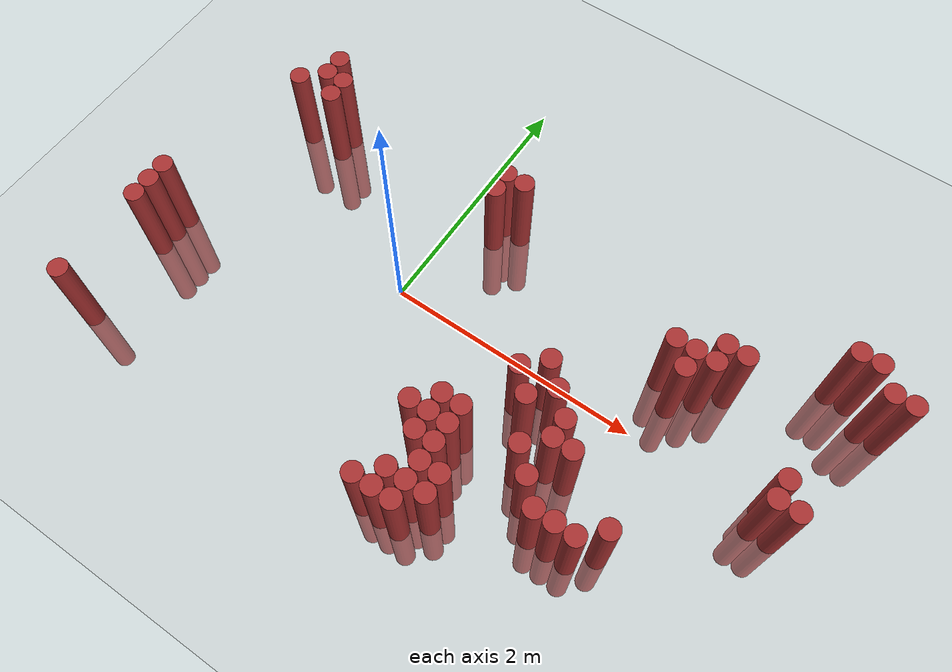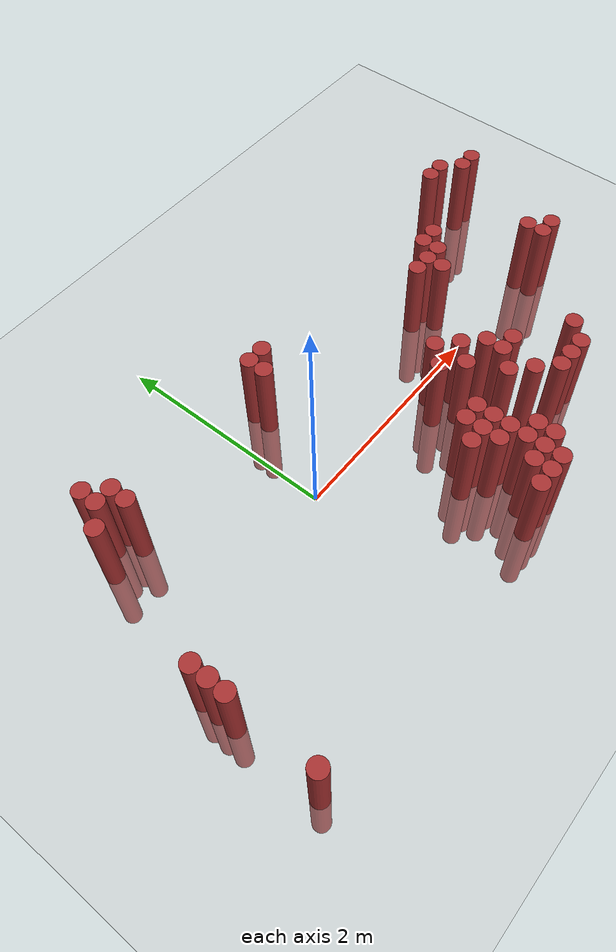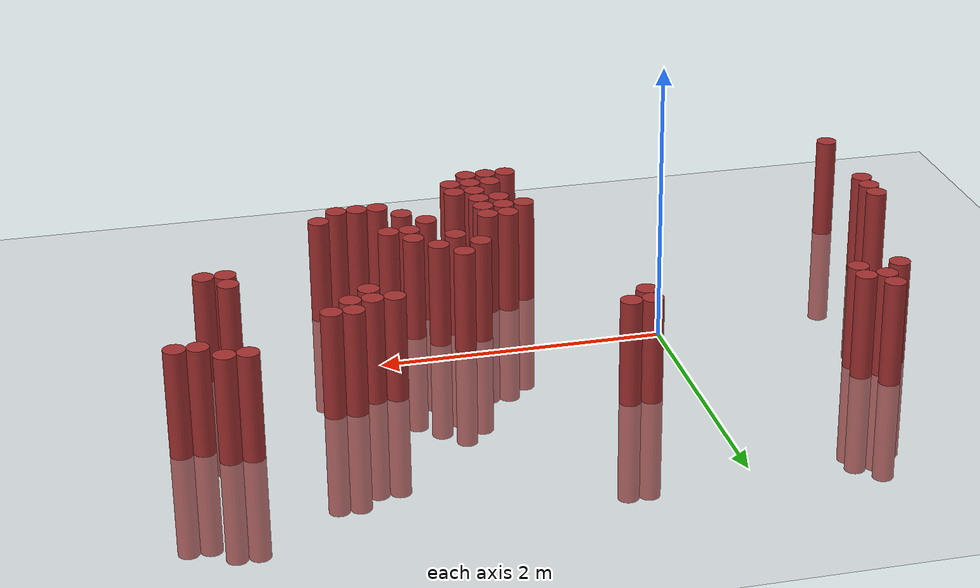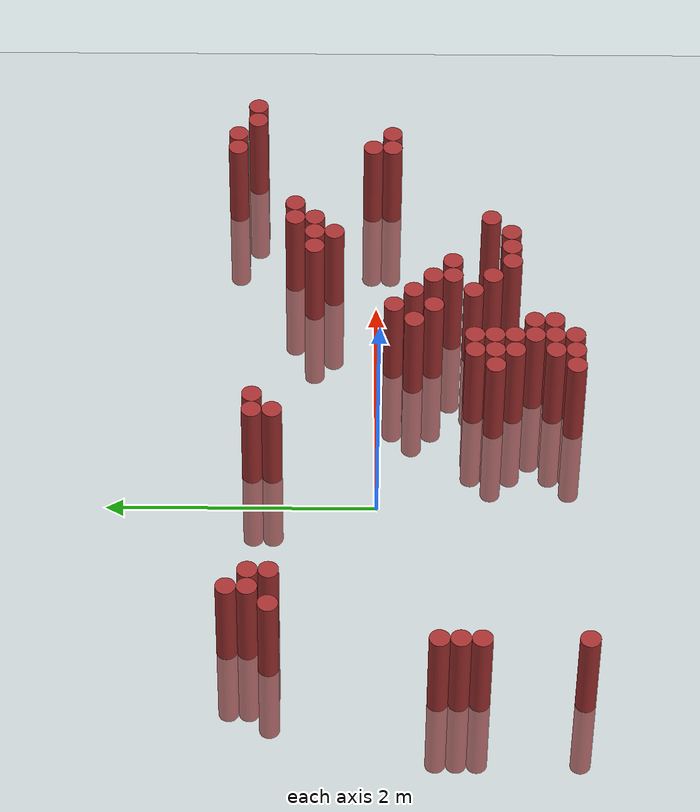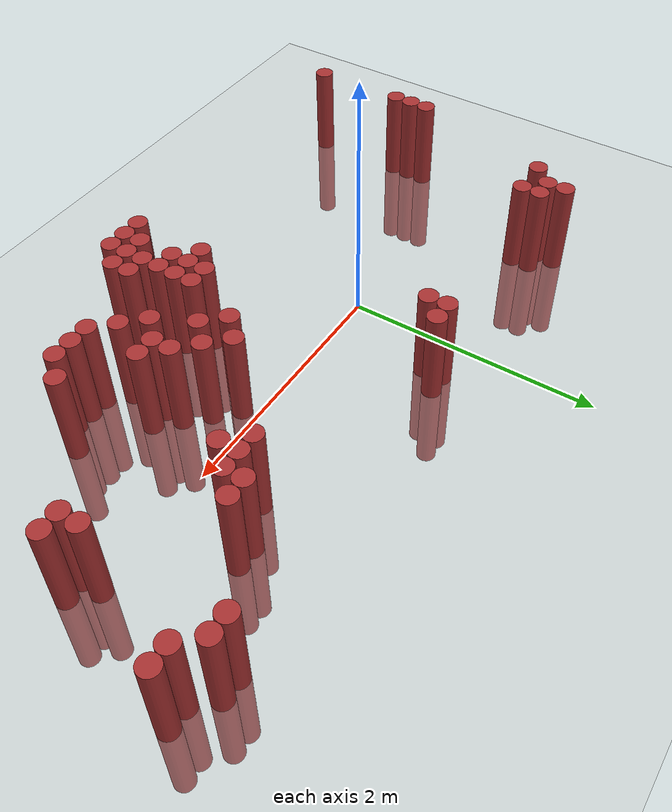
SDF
<sdf version="1.6">
 <world name="default">
  <model name="ground_plane">
   <static>1</static>
   <link name="link">
    <collision name="collision">
     <geometry><plane><normal>0 0 1</normal><size>100 100</size></plane></geometry>
     <surface><friction><ode><mu>100</mu><mu2>50</mu2></ode></friction></surface>
    </collision>
    <visual name="visual">
     <cast_shadows>0</cast_shadows>
     <geometry><plane><normal>0 0 1</normal><size>100 100</size></plane></geometry>
     <material>
      <script><uri>file://media/materials/scripts/gazebo.material</uri><name>Gazebo/Grey</name></script>
     </material>
    </visual>
   </link>
  </model>
  <model name="unit_cylinder_308">
   <static>1</static>
   <pose>-1.775000 -1.475000 0.000000 0.000000 0.000000 0.000000</pose>
   <link name="link">
    <inertial>
     <mass>1</mass>
     <inertia><ixx>0.145833</ixx><ixy>0</ixy><ixz>0</ixz><iyy>0.145833</iyy><iyz>0</iyz><izz>0.125</izz></inertia>
    </inertial>
    <collision name="collision">
     <geometry><cylinder><radius>0.075000</radius><length>1.5</length></cylinder></geometry>
    </collision>
    <visual name="visual">
     <geometry><cylinder><radius>0.075000</radius><length>1.5</length></cylinder></geometry>
     <material>
      <ambient>0.648000 0.192000 0.192000 1</ambient>
      <diffuse>0.648000 0.192000 0.192000 1</diffuse>
     </material>
     <material>
      <script><name>Gazebo/Grey</name><uri>file://media/materials/scripts/gazebo.material</uri></script>
     </material>
    </visual>
   </link>
  </model>
  <model name="unit_cylinder_309">
   <static>1</static>
   <pose>-1.775000 -0.725000 0.000000 0.000000 0.000000 0.000000</pose>
   <link name="link">
    <inertial>
     <mass>1</mass>
     <inertia><ixx>0.145833</ixx><ixy>0</ixy><ixz>0</ixz><iyy>0.145833</iyy><iyz>0</iyz><izz>0.125</izz></inertia>
    </inertial>
    <collision name="collision">
     <geometry><cylinder><radius>0.075000</radius><length>1.5</length></cylinder></geometry>
    </collision>
    <visual name="visual">
     <geometry><cylinder><radius>0.075000</radius><length>1.5</length></cylinder></geometry>
     <material>
      <ambient>0.648000 0.192000 0.192000 1</ambient>
      <diffuse>0.648000 0.192000 0.192000 1</diffuse>
     </material>
     <material>
      <script><name>Gazebo/Grey</name><uri>file://media/materials/scripts/gazebo.material</uri></script>
     </material>
    </visual>
   </link>
  </model>
  <model name="unit_cylinder_310">
   <static>1</static>
   <pose>-1.775000 -0.575000 0.000000 0.000000 0.000000 0.000000</pose>
   <link name="link">
    <inertial>
     <mass>1</mass>
     <inertia><ixx>0.145833</ixx><ixy>0</ixy><ixz>0</ixz><iyy>0.145833</iyy><iyz>0</iyz><izz>0.125</izz></inertia>
    </inertial>
    <collision name="collision">
     <geometry><cylinder><radius>0.075000</radius><length>1.5</length></cylinder></geometry>
    </collision>
    <visual name="visual">
     <geometry><cylinder><radius>0.075000</radius><length>1.5</length></cylinder></geometry>
     <material>
      <ambient>0.648000 0.192000 0.192000 1</ambient>
      <diffuse>0.648000 0.192000 0.192000 1</diffuse>
     </material>
     <material>
      <script><name>Gazebo/Grey</name><uri>file://media/materials/scripts/gazebo.material</uri></script>
     </material>
    </visual>
   </link>
  </model>
  <model name="unit_cylinder_311">
   <static>1</static>
   <pose>-1.775000 -0.425000 0.000000 0.000000 0.000000 0.000000</pose>
   <link name="link">
    <inertial>
     <mass>1</mass>
     <inertia><ixx>0.145833</ixx><ixy>0</ixy><ixz>0</ixz><iyy>0.145833</iyy><iyz>0</iyz><izz>0.125</izz></inertia>
    </inertial>
    <collision name="collision">
     <geometry><cylinder><radius>0.075000</radius><length>1.5</length></cylinder></geometry>
    </collision>
    <visual name="visual">
     <geometry><cylinder><radius>0.075000</radius><length>1.5</length></cylinder></geometry>
     <material>
      <ambient>0.648000 0.192000 0.192000 1</ambient>
      <diffuse>0.648000 0.192000 0.192000 1</diffuse>
     </material>
     <material>
      <script><name>Gazebo/Grey</name><uri>file://media/materials/scripts/gazebo.material</uri></script>
     </material>
    </visual>
   </link>
  </model>
  <model name="unit_cylinder_312">
   <static>1</static>
   <pose>-1.475000 0.775000 0.000000 0.000000 0.000000 0.000000</pose>
   <link name="link">
    <inertial>
     <mass>1</mass>
     <inertia><ixx>0.145833</ixx><ixy>0</ixy><ixz>0</ixz><iyy>0.145833</iyy><iyz>0</iyz><izz>0.125</izz></inertia>
    </inertial>
    <collision name="collision">
     <geometry><cylinder><radius>0.075000</radius><length>1.5</length></cylinder></geometry>
    </collision>
    <visual name="visual">
     <geometry><cylinder><radius>0.075000</radius><length>1.5</length></cylinder></geometry>
     <material>
      <ambient>0.648000 0.192000 0.192000 1</ambient>
      <diffuse>0.648000 0.192000 0.192000 1</diffuse>
     </material>
     <material>
      <script><name>Gazebo/Grey</name><uri>file://media/materials/scripts/gazebo.material</uri></script>
     </material>
    </visual>
   </link>
  </model>
  <model name="unit_cylinder_315">
   <static>1</static>
   <pose>-1.325000 0.925000 0.000000 0.000000 0.000000 0.000000</pose>
   <link name="link">
    <inertial>
     <mass>1</mass>
     <inertia><ixx>0.145833</ixx><ixy>0</ixy><ixz>0</ixz><iyy>0.145833</iyy><iyz>0</iyz><izz>0.125</izz></inertia>
    </inertial>
    <collision name="collision">
     <geometry><cylinder><radius>0.075000</radius><length>1.5</length></cylinder></geometry>
    </collision>
    <visual name="visual">
     <geometry><cylinder><radius>0.075000</radius><length>1.5</length></cylinder></geometry>
     <material>
      <ambient>0.648000 0.192000 0.192000 1</ambient>
      <diffuse>0.648000 0.192000 0.192000 1</diffuse>
     </material>
     <material>
      <script><name>Gazebo/Grey</name><uri>file://media/materials/scripts/gazebo.material</uri></script>
     </material>
    </visual>
   </link>
  </model>
  <model name="unit_cylinder_316">
   <static>1</static>
   <pose>-1.325000 1.075000 0.000000 0.000000 0.000000 0.000000</pose>
   <link name="link">
    <inertial>
     <mass>1</mass>
     <inertia><ixx>0.145833</ixx><ixy>0</ixy><ixz>0</ixz><iyy>0.145833</iyy><iyz>0</iyz><izz>0.125</izz></inertia>
    </inertial>
    <collision name="collision">
     <geometry><cylinder><radius>0.075000</radius><length>1.5</length></cylinder></geometry>
    </collision>
    <visual name="visual">
     <geometry><cylinder><radius>0.075000</radius><length>1.5</length></cylinder></geometry>
     <material>
      <ambient>0.648000 0.192000 0.192000 1</ambient>
      <diffuse>0.648000 0.192000 0.192000 1</diffuse>
     </material>
     <material>
      <script><name>Gazebo/Grey</name><uri>file://media/materials/scripts/gazebo.material</uri></script>
     </material>
    </visual>
   </link>
  </model>
  <model name="unit_cylinder_318">
   <static>1</static>
   <pose>-1.175000 0.775000 0.000000 0.000000 0.000000 0.000000</pose>
   <link name="link">
    <inertial>
     <mass>1</mass>
     <inertia><ixx>0.145833</ixx><ixy>0</ixy><ixz>0</ixz><iyy>0.145833</iyy><iyz>0</iyz><izz>0.125</izz></inertia>
    </inertial>
    <collision name="collision">
     <geometry><cylinder><radius>0.075000</radius><length>1.5</length></cylinder></geometry>
    </collision>
    <visual name="visual">
     <geometry><cylinder><radius>0.075000</radius><length>1.5</length></cylinder></geometry>
     <material>
      <ambient>0.648000 0.192000 0.192000 1</ambient>
      <diffuse>0.648000 0.192000 0.192000 1</diffuse>
     </material>
     <material>
      <script><name>Gazebo/Grey</name><uri>file://media/materials/scripts/gazebo.material</uri></script>
     </material>
    </visual>
   </link>
  </model>
  <model name="unit_cylinder_319">
   <static>1</static>
   <pose>-1.175000 0.925000 0.000000 0.000000 0.000000 0.000000</pose>
   <link name="link">
    <inertial>
     <mass>1</mass>
     <inertia><ixx>0.145833</ixx><ixy>0</ixy><ixz>0</ixz><iyy>0.145833</iyy><iyz>0</iyz><izz>0.125</izz></inertia>
    </inertial>
    <collision name="collision">
     <geometry><cylinder><radius>0.075000</radius><length>1.5</length></cylinder></geometry>
    </collision>
    <visual name="visual">
     <geometry><cylinder><radius>0.075000</radius><length>1.5</length></cylinder></geometry>
     <material>
      <ambient>0.648000 0.192000 0.192000 1</ambient>
      <diffuse>0.648000 0.192000 0.192000 1</diffuse>
     </material>
     <material>
      <script><name>Gazebo/Grey</name><uri>file://media/materials/scripts/gazebo.material</uri></script>
     </material>
    </visual>
   </link>
  </model>
  <model name="unit_cylinder_339">
   <static>1</static>
   <pose>0.325000 0.775000 0.000000 0.000000 0.000000 0.000000</pose>
   <link name="link">
    <inertial>
     <mass>1</mass>
     <inertia><ixx>0.145833</ixx><ixy>0</ixy><ixz>0</ixz><iyy>0.145833</iyy><iyz>0</iyz><izz>0.125</izz></inertia>
    </inertial>
    <collision name="collision">
     <geometry><cylinder><radius>0.075000</radius><length>1.5</length></cylinder></geometry>
    </collision>
    <visual name="visual">
     <geometry><cylinder><radius>0.075000</radius><length>1.5</length></cylinder></geometry>
     <material>
      <ambient>0.648000 0.192000 0.192000 1</ambient>
      <diffuse>0.648000 0.192000 0.192000 1</diffuse>
     </material>
     <material>
      <script><name>Gazebo/Grey</name><uri>file://media/materials/scripts/gazebo.material</uri></script>
     </material>
    </visual>
   </link>
  </model>
  <model name="unit_cylinder_340">
   <static>1</static>
   <pose>0.325000 0.925000 0.000000 0.000000 0.000000 0.000000</pose>
   <link name="link">
    <inertial>
     <mass>1</mass>
     <inertia><ixx>0.145833</ixx><ixy>0</ixy><ixz>0</ixz><iyy>0.145833</iyy><iyz>0</iyz><izz>0.125</izz></inertia>
    </inertial>
    <collision name="collision">
     <geometry><cylinder><radius>0.075000</radius><length>1.5</length></cylinder></geometry>
    </collision>
    <visual name="visual">
     <geometry><cylinder><radius>0.075000</radius><length>1.5</length></cylinder></geometry>
     <material>
      <ambient>0.648000 0.192000 0.192000 1</ambient>
      <diffuse>0.648000 0.192000 0.192000 1</diffuse>
     </material>
     <material>
      <script><name>Gazebo/Grey</name><uri>file://media/materials/scripts/gazebo.material</uri></script>
     </material>
    </visual>
   </link>
  </model>
  <model name="unit_cylinder_344">
   <static>1</static>
   <pose>0.475000 0.925000 0.000000 0.000000 0.000000 0.000000</pose>
   <link name="link">
    <inertial>
     <mass>1</mass>
     <inertia><ixx>0.145833</ixx><ixy>0</ixy><ixz>0</ixz><iyy>0.145833</iyy><iyz>0</iyz><izz>0.125</izz></inertia>
    </inertial>
    <collision name="collision">
     <geometry><cylinder><radius>0.075000</radius><length>1.5</length></cylinder></geometry>
    </collision>
    <visual name="visual">
     <geometry><cylinder><radius>0.075000</radius><length>1.5</length></cylinder></geometry>
     <material>
      <ambient>0.648000 0.192000 0.192000 1</ambient>
      <diffuse>0.648000 0.192000 0.192000 1</diffuse>
     </material>
     <material>
      <script><name>Gazebo/Grey</name><uri>file://media/materials/scripts/gazebo.material</uri></script>
     </material>
    </visual>
   </link>
  </model>
  <model name="unit_cylinder_351">
   <static>1</static>
   <pose>0.775000 -1.475000 0.000000 0.000000 0.000000 0.000000</pose>
   <link name="link">
    <inertial>
     <mass>1</mass>
     <inertia><ixx>0.145833</ixx><ixy>0</ixy><ixz>0</ixz><iyy>0.145833</iyy><iyz>0</iyz><izz>0.125</izz></inertia>
    </inertial>
    <collision name="collision">
     <geometry><cylinder><radius>0.075000</radius><length>1.5</length></cylinder></geometry>
    </collision>
    <visual name="visual">
     <geometry><cylinder><radius>0.075000</radius><length>1.5</length></cylinder></geometry>
     <material>
      <ambient>0.648000 0.192000 0.192000 1</ambient>
      <diffuse>0.648000 0.192000 0.192000 1</diffuse>
     </material>
     <material>
      <script><name>Gazebo/Grey</name><uri>file://media/materials/scripts/gazebo.material</uri></script>
     </material>
    </visual>
   </link>
  </model>
  <model name="unit_cylinder_352">
   <static>1</static>
   <pose>0.775000 -0.875000 0.000000 0.000000 0.000000 0.000000</pose>
   <link name="link">
    <inertial>
     <mass>1</mass>
     <inertia><ixx>0.145833</ixx><ixy>0</ixy><ixz>0</ixz><iyy>0.145833</iyy><iyz>0</iyz><izz>0.125</izz></inertia>
    </inertial>
    <collision name="collision">
     <geometry><cylinder><radius>0.075000</radius><length>1.5</length></cylinder></geometry>
    </collision>
    <visual name="visual">
     <geometry><cylinder><radius>0.075000</radius><length>1.5</length></cylinder></geometry>
     <material>
      <ambient>0.648000 0.192000 0.192000 1</ambient>
      <diffuse>0.648000 0.192000 0.192000 1</diffuse>
     </material>
     <material>
      <script><name>Gazebo/Grey</name><uri>file://media/materials/scripts/gazebo.material</uri></script>
     </material>
    </visual>
   </link>
  </model>
  <model name="unit_cylinder_355">
   <static>1</static>
   <pose>0.925000 -1.475000 0.000000 0.000000 0.000000 0.000000</pose>
   <link name="link">
    <inertial>
     <mass>1</mass>
     <inertia><ixx>0.145833</ixx><ixy>0</ixy><ixz>0</ixz><iyy>0.145833</iyy><iyz>0</iyz><izz>0.125</izz></inertia>
    </inertial>
    <collision name="collision">
     <geometry><cylinder><radius>0.075000</radius><length>1.5</length></cylinder></geometry>
    </collision>
    <visual name="visual">
     <geometry><cylinder><radius>0.075000</radius><length>1.5</length></cylinder></geometry>
     <material>
      <ambient>0.648000 0.192000 0.192000 1</ambient>
      <diffuse>0.648000 0.192000 0.192000 1</diffuse>
     </material>
     <material>
      <script><name>Gazebo/Grey</name><uri>file://media/materials/scripts/gazebo.material</uri></script>
     </material>
    </visual>
   </link>
  </model>
  <model name="unit_cylinder_356">
   <static>1</static>
   <pose>0.925000 -1.325000 0.000000 0.000000 0.000000 0.000000</pose>
   <link name="link">
    <inertial>
     <mass>1</mass>
     <inertia><ixx>0.145833</ixx><ixy>0</ixy><ixz>0</ixz><iyy>0.145833</iyy><iyz>0</iyz><izz>0.125</izz></inertia>
    </inertial>
    <collision name="collision">
     <geometry><cylinder><radius>0.075000</radius><length>1.5</length></cylinder></geometry>
    </collision>
    <visual name="visual">
     <geometry><cylinder><radius>0.075000</radius><length>1.5</length></cylinder></geometry>
     <material>
      <ambient>0.648000 0.192000 0.192000 1</ambient>
      <diffuse>0.648000 0.192000 0.192000 1</diffuse>
     </material>
     <material>
      <script><name>Gazebo/Grey</name><uri>file://media/materials/scripts/gazebo.material</uri></script>
     </material>
    </visual>
   </link>
  </model>
  <model name="unit_cylinder_357">
   <static>1</static>
   <pose>0.925000 -1.025000 0.000000 0.000000 0.000000 0.000000</pose>
   <link name="link">
    <inertial>
     <mass>1</mass>
     <inertia><ixx>0.145833</ixx><ixy>0</ixy><ixz>0</ixz><iyy>0.145833</iyy><iyz>0</iyz><izz>0.125</izz></inertia>
    </inertial>
    <collision name="collision">
     <geometry><cylinder><radius>0.075000</radius><length>1.5</length></cylinder></geometry>
    </collision>
    <visual name="visual">
     <geometry><cylinder><radius>0.075000</radius><length>1.5</length></cylinder></geometry>
     <material>
      <ambient>0.648000 0.192000 0.192000 1</ambient>
      <diffuse>0.648000 0.192000 0.192000 1</diffuse>
     </material>
     <material>
      <script><name>Gazebo/Grey</name><uri>file://media/materials/scripts/gazebo.material</uri></script>
     </material>
    </visual>
   </link>
  </model>
  <model name="unit_cylinder_358">
   <static>1</static>
   <pose>0.925000 -0.875000 0.000000 0.000000 0.000000 0.000000</pose>
   <link name="link">
    <inertial>
     <mass>1</mass>
     <inertia><ixx>0.145833</ixx><ixy>0</ixy><ixz>0</ixz><iyy>0.145833</iyy><iyz>0</iyz><izz>0.125</izz></inertia>
    </inertial>
    <collision name="collision">
     <geometry><cylinder><radius>0.075000</radius><length>1.5</length></cylinder></geometry>
    </collision>
    <visual name="visual">
     <geometry><cylinder><radius>0.075000</radius><length>1.5</length></cylinder></geometry>
     <material>
      <ambient>0.648000 0.192000 0.192000 1</ambient>
      <diffuse>0.648000 0.192000 0.192000 1</diffuse>
     </material>
     <material>
      <script><name>Gazebo/Grey</name><uri>file://media/materials/scripts/gazebo.material</uri></script>
     </material>
    </visual>
   </link>
  </model>
  <model name="unit_cylinder_359">
   <static>1</static>
   <pose>0.925000 -0.725000 0.000000 0.000000 0.000000 0.000000</pose>
   <link name="link">
    <inertial>
     <mass>1</mass>
     <inertia><ixx>0.145833</ixx><ixy>0</ixy><ixz>0</ixz><iyy>0.145833</iyy><iyz>0</iyz><izz>0.125</izz></inertia>
    </inertial>
    <collision name="collision">
     <geometry><cylinder><radius>0.075000</radius><length>1.5</length></cylinder></geometry>
    </collision>
    <visual name="visual">
     <geometry><cylinder><radius>0.075000</radius><length>1.5</length></cylinder></geometry>
     <material>
      <ambient>0.648000 0.192000 0.192000 1</ambient>
      <diffuse>0.648000 0.192000 0.192000 1</diffuse>
     </material>
     <material>
      <script><name>Gazebo/Grey</name><uri>file://media/materials/scripts/gazebo.material</uri></script>
     </material>
    </visual>
   </link>
  </model>
  <model name="unit_cylinder_361">
   <static>1</static>
   <pose>1.075000 -1.475000 0.000000 0.000000 0.000000 0.000000</pose>
   <link name="link">
    <inertial>
     <mass>1</mass>
     <inertia><ixx>0.145833</ixx><ixy>0</ixy><ixz>0</ixz><iyy>0.145833</iyy><iyz>0</iyz><izz>0.125</izz></inertia>
    </inertial>
    <collision name="collision">
     <geometry><cylinder><radius>0.075000</radius><length>1.5</length></cylinder></geometry>
    </collision>
    <visual name="visual">
     <geometry><cylinder><radius>0.075000</radius><length>1.5</length></cylinder></geometry>
     <material>
      <ambient>0.648000 0.192000 0.192000 1</ambient>
      <diffuse>0.648000 0.192000 0.192000 1</diffuse>
     </material>
     <material>
      <script><name>Gazebo/Grey</name><uri>file://media/materials/scripts/gazebo.material</uri></script>
     </material>
    </visual>
   </link>
  </model>
  <model name="unit_cylinder_362">
   <static>1</static>
   <pose>1.075000 -1.325000 0.000000 0.000000 0.000000 0.000000</pose>
   <link name="link">
    <inertial>
     <mass>1</mass>
     <inertia><ixx>0.145833</ixx><ixy>0</ixy><ixz>0</ixz><iyy>0.145833</iyy><iyz>0</iyz><izz>0.125</izz></inertia>
    </inertial>
    <collision name="collision">
     <geometry><cylinder><radius>0.075000</radius><length>1.5</length></cylinder></geometry>
    </collision>
    <visual name="visual">
     <geometry><cylinder><radius>0.075000</radius><length>1.5</length></cylinder></geometry>
     <material>
      <ambient>0.648000 0.192000 0.192000 1</ambient>
      <diffuse>0.648000 0.192000 0.192000 1</diffuse>
     </material>
     <material>
      <script><name>Gazebo/Grey</name><uri>file://media/materials/scripts/gazebo.material</uri></script>
     </material>
    </visual>
   </link>
  </model>
  <model name="unit_cylinder_363">
   <static>1</static>
   <pose>1.075000 -1.175000 0.000000 0.000000 0.000000 0.000000</pose>
   <link name="link">
    <inertial>
     <mass>1</mass>
     <inertia><ixx>0.145833</ixx><ixy>0</ixy><ixz>0</ixz><iyy>0.145833</iyy><iyz>0</iyz><izz>0.125</izz></inertia>
    </inertial>
    <collision name="collision">
     <geometry><cylinder><radius>0.075000</radius><length>1.5</length></cylinder></geometry>
    </collision>
    <visual name="visual">
     <geometry><cylinder><radius>0.075000</radius><length>1.5</length></cylinder></geometry>
     <material>
      <ambient>0.648000 0.192000 0.192000 1</ambient>
      <diffuse>0.648000 0.192000 0.192000 1</diffuse>
     </material>
     <material>
      <script><name>Gazebo/Grey</name><uri>file://media/materials/scripts/gazebo.material</uri></script>
     </material>
    </visual>
   </link>
  </model>
  <model name="unit_cylinder_364">
   <static>1</static>
   <pose>1.075000 -1.025000 0.000000 0.000000 0.000000 0.000000</pose>
   <link name="link">
    <inertial>
     <mass>1</mass>
     <inertia><ixx>0.145833</ixx><ixy>0</ixy><ixz>0</ixz><iyy>0.145833</iyy><iyz>0</iyz><izz>0.125</izz></inertia>
    </inertial>
    <collision name="collision">
     <geometry><cylinder><radius>0.075000</radius><length>1.5</length></cylinder></geometry>
    </collision>
    <visual name="visual">
     <geometry><cylinder><radius>0.075000</radius><length>1.5</length></cylinder></geometry>
     <material>
      <ambient>0.648000 0.192000 0.192000 1</ambient>
      <diffuse>0.648000 0.192000 0.192000 1</diffuse>
     </material>
     <material>
      <script><name>Gazebo/Grey</name><uri>file://media/materials/scripts/gazebo.material</uri></script>
     </material>
    </visual>
   </link>
  </model>
  <model name="unit_cylinder_365">
   <static>1</static>
   <pose>1.075000 -0.875000 0.000000 0.000000 0.000000 0.000000</pose>
   <link name="link">
    <inertial>
     <mass>1</mass>
     <inertia><ixx>0.145833</ixx><ixy>0</ixy><ixz>0</ixz><iyy>0.145833</iyy><iyz>0</iyz><izz>0.125</izz></inertia>
    </inertial>
    <collision name="collision">
     <geometry><cylinder><radius>0.075000</radius><length>1.5</length></cylinder></geometry>
    </collision>
    <visual name="visual">
     <geometry><cylinder><radius>0.075000</radius><length>1.5</length></cylinder></geometry>
     <material>
      <ambient>0.648000 0.192000 0.192000 1</ambient>
      <diffuse>0.648000 0.192000 0.192000 1</diffuse>
     </material>
     <material>
      <script><name>Gazebo/Grey</name><uri>file://media/materials/scripts/gazebo.material</uri></script>
     </material>
    </visual>
   </link>
  </model>
  <model name="unit_cylinder_366">
   <static>1</static>
   <pose>1.075000 -0.725000 0.000000 0.000000 0.000000 0.000000</pose>
   <link name="link">
    <inertial>
     <mass>1</mass>
     <inertia><ixx>0.145833</ixx><ixy>0</ixy><ixz>0</ixz><iyy>0.145833</iyy><iyz>0</iyz><izz>0.125</izz></inertia>
    </inertial>
    <collision name="collision">
     <geometry><cylinder><radius>0.075000</radius><length>1.5</length></cylinder></geometry>
    </collision>
    <visual name="visual">
     <geometry><cylinder><radius>0.075000</radius><length>1.5</length></cylinder></geometry>
     <material>
      <ambient>0.648000 0.192000 0.192000 1</ambient>
      <diffuse>0.648000 0.192000 0.192000 1</diffuse>
     </material>
     <material>
      <script><name>Gazebo/Grey</name><uri>file://media/materials/scripts/gazebo.material</uri></script>
     </material>
    </visual>
   </link>
  </model>
  <model name="unit_cylinder_368">
   <static>1</static>
   <pose>1.225000 -1.325000 0.000000 0.000000 0.000000 0.000000</pose>
   <link name="link">
    <inertial>
     <mass>1</mass>
     <inertia><ixx>0.145833</ixx><ixy>0</ixy><ixz>0</ixz><iyy>0.145833</iyy><iyz>0</iyz><izz>0.125</izz></inertia>
    </inertial>
    <collision name="collision">
     <geometry><cylinder><radius>0.075000</radius><length>1.5</length></cylinder></geometry>
    </collision>
    <visual name="visual">
     <geometry><cylinder><radius>0.075000</radius><length>1.5</length></cylinder></geometry>
     <material>
      <ambient>0.648000 0.192000 0.192000 1</ambient>
      <diffuse>0.648000 0.192000 0.192000 1</diffuse>
     </material>
     <material>
      <script><name>Gazebo/Grey</name><uri>file://media/materials/scripts/gazebo.material</uri></script>
     </material>
    </visual>
   </link>
  </model>
  <model name="unit_cylinder_369">
   <static>1</static>
   <pose>1.225000 -1.175000 0.000000 0.000000 0.000000 0.000000</pose>
   <link name="link">
    <inertial>
     <mass>1</mass>
     <inertia><ixx>0.145833</ixx><ixy>0</ixy><ixz>0</ixz><iyy>0.145833</iyy><iyz>0</iyz><izz>0.125</izz></inertia>
    </inertial>
    <collision name="collision">
     <geometry><cylinder><radius>0.075000</radius><length>1.5</length></cylinder></geometry>
    </collision>
    <visual name="visual">
     <geometry><cylinder><radius>0.075000</radius><length>1.5</length></cylinder></geometry>
     <material>
      <ambient>0.648000 0.192000 0.192000 1</ambient>
      <diffuse>0.648000 0.192000 0.192000 1</diffuse>
     </material>
     <material>
      <script><name>Gazebo/Grey</name><uri>file://media/materials/scripts/gazebo.material</uri></script>
     </material>
    </visual>
   </link>
  </model>
  <model name="unit_cylinder_370">
   <static>1</static>
   <pose>1.225000 -0.275000 0.000000 0.000000 0.000000 0.000000</pose>
   <link name="link">
    <inertial>
     <mass>1</mass>
     <inertia><ixx>0.145833</ixx><ixy>0</ixy><ixz>0</ixz><iyy>0.145833</iyy><iyz>0</iyz><izz>0.125</izz></inertia>
    </inertial>
    <collision name="collision">
     <geometry><cylinder><radius>0.075000</radius><length>1.5</length></cylinder></geometry>
    </collision>
    <visual name="visual">
     <geometry><cylinder><radius>0.075000</radius><length>1.5</length></cylinder></geometry>
     <material>
      <ambient>0.648000 0.192000 0.192000 1</ambient>
      <diffuse>0.648000 0.192000 0.192000 1</diffuse>
     </material>
     <material>
      <script><name>Gazebo/Grey</name><uri>file://media/materials/scripts/gazebo.material</uri></script>
     </material>
    </visual>
   </link>
  </model>
  <model name="unit_cylinder_373">
   <static>1</static>
   <pose>1.375000 -0.425000 0.000000 0.000000 0.000000 0.000000</pose>
   <link name="link">
    <inertial>
     <mass>1</mass>
     <inertia><ixx>0.145833</ixx><ixy>0</ixy><ixz>0</ixz><iyy>0.145833</iyy><iyz>0</iyz><izz>0.125</izz></inertia>
    </inertial>
    <collision name="collision">
     <geometry><cylinder><radius>0.075000</radius><length>1.5</length></cylinder></geometry>
    </collision>
    <visual name="visual">
     <geometry><cylinder><radius>0.075000</radius><length>1.5</length></cylinder></geometry>
     <material>
      <ambient>0.648000 0.192000 0.192000 1</ambient>
      <diffuse>0.648000 0.192000 0.192000 1</diffuse>
     </material>
     <material>
      <script><name>Gazebo/Grey</name><uri>file://media/materials/scripts/gazebo.material</uri></script>
     </material>
    </visual>
   </link>
  </model>
  <model name="unit_cylinder_374">
   <static>1</static>
   <pose>1.375000 -0.125000 0.000000 0.000000 0.000000 0.000000</pose>
   <link name="link">
    <inertial>
     <mass>1</mass>
     <inertia><ixx>0.145833</ixx><ixy>0</ixy><ixz>0</ixz><iyy>0.145833</iyy><iyz>0</iyz><izz>0.125</izz></inertia>
    </inertial>
    <collision name="collision">
     <geometry><cylinder><radius>0.075000</radius><length>1.5</length></cylinder></geometry>
    </collision>
    <visual name="visual">
     <geometry><cylinder><radius>0.075000</radius><length>1.5</length></cylinder></geometry>
     <material>
      <ambient>0.648000 0.192000 0.192000 1</ambient>
      <diffuse>0.648000 0.192000 0.192000 1</diffuse>
     </material>
     <material>
      <script><name>Gazebo/Grey</name><uri>file://media/materials/scripts/gazebo.material</uri></script>
     </material>
    </visual>
   </link>
  </model>
  <model name="unit_cylinder_380">
   <static>1</static>
   <pose>1.525000 -0.725000 0.000000 0.000000 0.000000 0.000000</pose>
   <link name="link">
    <inertial>
     <mass>1</mass>
     <inertia><ixx>0.145833</ixx><ixy>0</ixy><ixz>0</ixz><iyy>0.145833</iyy><iyz>0</iyz><izz>0.125</izz></inertia>
    </inertial>
    <collision name="collision">
     <geometry><cylinder><radius>0.075000</radius><length>1.5</length></cylinder></geometry>
    </collision>
    <visual name="visual">
     <geometry><cylinder><radius>0.075000</radius><length>1.5</length></cylinder></geometry>
     <material>
      <ambient>0.648000 0.192000 0.192000 1</ambient>
      <diffuse>0.648000 0.192000 0.192000 1</diffuse>
     </material>
     <material>
      <script><name>Gazebo/Grey</name><uri>file://media/materials/scripts/gazebo.material</uri></script>
     </material>
    </visual>
   </link>
  </model>
  <model name="unit_cylinder_381">
   <static>1</static>
   <pose>1.525000 -0.275000 0.000000 0.000000 0.000000 0.000000</pose>
   <link name="link">
    <inertial>
     <mass>1</mass>
     <inertia><ixx>0.145833</ixx><ixy>0</ixy><ixz>0</ixz><iyy>0.145833</iyy><iyz>0</iyz><izz>0.125</izz></inertia>
    </inertial>
    <collision name="collision">
     <geometry><cylinder><radius>0.075000</radius><length>1.5</length></cylinder></geometry>
    </collision>
    <visual name="visual">
     <geometry><cylinder><radius>0.075000</radius><length>1.5</length></cylinder></geometry>
     <material>
      <ambient>0.648000 0.192000 0.192000 1</ambient>
      <diffuse>0.648000 0.192000 0.192000 1</diffuse>
     </material>
     <material>
      <script><name>Gazebo/Grey</name><uri>file://media/materials/scripts/gazebo.material</uri></script>
     </material>
    </visual>
   </link>
  </model>
  <model name="unit_cylinder_387">
   <static>1</static>
   <pose>1.675000 -0.875000 0.000000 0.000000 0.000000 0.000000</pose>
   <link name="link">
    <inertial>
     <mass>1</mass>
     <inertia><ixx>0.145833</ixx><ixy>0</ixy><ixz>0</ixz><iyy>0.145833</iyy><iyz>0</iyz><izz>0.125</izz></inertia>
    </inertial>
    <collision name="collision">
     <geometry><cylinder><radius>0.075000</radius><length>1.5</length></cylinder></geometry>
    </collision>
    <visual name="visual">
     <geometry><cylinder><radius>0.075000</radius><length>1.5</length></cylinder></geometry>
     <material>
      <ambient>0.648000 0.192000 0.192000 1</ambient>
      <diffuse>0.648000 0.192000 0.192000 1</diffuse>
     </material>
     <material>
      <script><name>Gazebo/Grey</name><uri>file://media/materials/scripts/gazebo.material</uri></script>
     </material>
    </visual>
   </link>
  </model>
  <model name="unit_cylinder_388">
   <static>1</static>
   <pose>1.675000 -0.575000 0.000000 0.000000 0.000000 0.000000</pose>
   <link name="link">
    <inertial>
     <mass>1</mass>
     <inertia><ixx>0.145833</ixx><ixy>0</ixy><ixz>0</ixz><iyy>0.145833</iyy><iyz>0</iyz><izz>0.125</izz></inertia>
    </inertial>
    <collision name="collision">
     <geometry><cylinder><radius>0.075000</radius><length>1.5</length></cylinder></geometry>
    </collision>
    <visual name="visual">
     <geometry><cylinder><radius>0.075000</radius><length>1.5</length></cylinder></geometry>
     <material>
      <ambient>0.648000 0.192000 0.192000 1</ambient>
      <diffuse>0.648000 0.192000 0.192000 1</diffuse>
     </material>
     <material>
      <script><name>Gazebo/Grey</name><uri>file://media/materials/scripts/gazebo.material</uri></script>
     </material>
    </visual>
   </link>
  </model>
  <model name="unit_cylinder_389">
   <static>1</static>
   <pose>1.675000 -0.425000 0.000000 0.000000 0.000000 0.000000</pose>
   <link name="link">
    <inertial>
     <mass>1</mass>
     <inertia><ixx>0.145833</ixx><ixy>0</ixy><ixz>0</ixz><iyy>0.145833</iyy><iyz>0</iyz><izz>0.125</izz></inertia>
    </inertial>
    <collision name="collision">
     <geometry><cylinder><radius>0.075000</radius><length>1.5</length></cylinder></geometry>
    </collision>
    <visual name="visual">
     <geometry><cylinder><radius>0.075000</radius><length>1.5</length></cylinder></geometry>
     <material>
      <ambient>0.648000 0.192000 0.192000 1</ambient>
      <diffuse>0.648000 0.192000 0.192000 1</diffuse>
     </material>
     <material>
      <script><name>Gazebo/Grey</name><uri>file://media/materials/scripts/gazebo.material</uri></script>
     </material>
    </visual>
   </link>
  </model>
  <model name="unit_cylinder_397">
   <static>1</static>
   <pose>1.825000 -1.025000 0.000000 0.000000 0.000000 0.000000</pose>
   <link name="link">
    <inertial>
     <mass>1</mass>
     <inertia><ixx>0.145833</ixx><ixy>0</ixy><ixz>0</ixz><iyy>0.145833</iyy><iyz>0</iyz><izz>0.125</izz></inertia>
    </inertial>
    <collision name="collision">
     <geometry><cylinder><radius>0.075000</radius><length>1.5</length></cylinder></geometry>
    </collision>
    <visual name="visual">
     <geometry><cylinder><radius>0.075000</radius><length>1.5</length></cylinder></geometry>
     <material>
      <ambient>0.648000 0.192000 0.192000 1</ambient>
      <diffuse>0.648000 0.192000 0.192000 1</diffuse>
     </material>
     <material>
      <script><name>Gazebo/Grey</name><uri>file://media/materials/scripts/gazebo.material</uri></script>
     </material>
    </visual>
   </link>
  </model>
  <model name="unit_cylinder_398">
   <static>1</static>
   <pose>1.825000 -0.575000 0.000000 0.000000 0.000000 0.000000</pose>
   <link name="link">
    <inertial>
     <mass>1</mass>
     <inertia><ixx>0.145833</ixx><ixy>0</ixy><ixz>0</ixz><iyy>0.145833</iyy><iyz>0</iyz><izz>0.125</izz></inertia>
    </inertial>
    <collision name="collision">
     <geometry><cylinder><radius>0.075000</radius><length>1.5</length></cylinder></geometry>
    </collision>
    <visual name="visual">
     <geometry><cylinder><radius>0.075000</radius><length>1.5</length></cylinder></geometry>
     <material>
      <ambient>0.648000 0.192000 0.192000 1</ambient>
      <diffuse>0.648000 0.192000 0.192000 1</diffuse>
     </material>
     <material>
      <script><name>Gazebo/Grey</name><uri>file://media/materials/scripts/gazebo.material</uri></script>
     </material>
    </visual>
   </link>
  </model>
  <model name="unit_cylinder_405">
   <static>1</static>
   <pose>1.975000 -1.025000 0.000000 0.000000 0.000000 0.000000</pose>
   <link name="link">
    <inertial>
     <mass>1</mass>
     <inertia><ixx>0.145833</ixx><ixy>0</ixy><ixz>0</ixz><iyy>0.145833</iyy><iyz>0</iyz><izz>0.125</izz></inertia>
    </inertial>
    <collision name="collision">
     <geometry><cylinder><radius>0.075000</radius><length>1.5</length></cylinder></geometry>
    </collision>
    <visual name="visual">
     <geometry><cylinder><radius>0.075000</radius><length>1.5</length></cylinder></geometry>
     <material>
      <ambient>0.648000 0.192000 0.192000 1</ambient>
      <diffuse>0.648000 0.192000 0.192000 1</diffuse>
     </material>
     <material>
      <script><name>Gazebo/Grey</name><uri>file://media/materials/scripts/gazebo.material</uri></script>
     </material>
    </visual>
   </link>
  </model>
  <model name="unit_cylinder_406">
   <static>1</static>
   <pose>1.975000 0.475000 0.000000 0.000000 0.000000 0.000000</pose>
   <link name="link">
    <inertial>
     <mass>1</mass>
     <inertia><ixx>0.145833</ixx><ixy>0</ixy><ixz>0</ixz><iyy>0.145833</iyy><iyz>0</iyz><izz>0.125</izz></inertia>
    </inertial>
    <collision name="collision">
     <geometry><cylinder><radius>0.075000</radius><length>1.5</length></cylinder></geometry>
    </collision>
    <visual name="visual">
     <geometry><cylinder><radius>0.075000</radius><length>1.5</length></cylinder></geometry>
     <material>
      <ambient>0.648000 0.192000 0.192000 1</ambient>
      <diffuse>0.648000 0.192000 0.192000 1</diffuse>
     </material>
     <material>
      <script><name>Gazebo/Grey</name><uri>file://media/materials/scripts/gazebo.material</uri></script>
     </material>
    </visual>
   </link>
  </model>
  <model name="unit_cylinder_411">
   <static>1</static>
   <pose>2.125000 -1.025000 0.000000 0.000000 0.000000 0.000000</pose>
   <link name="link">
    <inertial>
     <mass>1</mass>
     <inertia><ixx>0.145833</ixx><ixy>0</ixy><ixz>0</ixz><iyy>0.145833</iyy><iyz>0</iyz><izz>0.125</izz></inertia>
    </inertial>
    <collision name="collision">
     <geometry><cylinder><radius>0.075000</radius><length>1.5</length></cylinder></geometry>
    </collision>
    <visual name="visual">
     <geometry><cylinder><radius>0.075000</radius><length>1.5</length></cylinder></geometry>
     <material>
      <ambient>0.648000 0.192000 0.192000 1</ambient>
      <diffuse>0.648000 0.192000 0.192000 1</diffuse>
     </material>
     <material>
      <script><name>Gazebo/Grey</name><uri>file://media/materials/scripts/gazebo.material</uri></script>
     </material>
    </visual>
   </link>
  </model>
  <model name="unit_cylinder_412">
   <static>1</static>
   <pose>2.125000 0.325000 0.000000 0.000000 0.000000 0.000000</pose>
   <link name="link">
    <inertial>
     <mass>1</mass>
     <inertia><ixx>0.145833</ixx><ixy>0</ixy><ixz>0</ixz><iyy>0.145833</iyy><iyz>0</iyz><izz>0.125</izz></inertia>
    </inertial>
    <collision name="collision">
     <geometry><cylinder><radius>0.075000</radius><length>1.5</length></cylinder></geometry>
    </collision>
    <visual name="visual">
     <geometry><cylinder><radius>0.075000</radius><length>1.5</length></cylinder></geometry>
     <material>
      <ambient>0.648000 0.192000 0.192000 1</ambient>
      <diffuse>0.648000 0.192000 0.192000 1</diffuse>
     </material>
     <material>
      <script><name>Gazebo/Grey</name><uri>file://media/materials/scripts/gazebo.material</uri></script>
     </material>
    </visual>
   </link>
  </model>
  <model name="unit_cylinder_413">
   <static>1</static>
   <pose>2.125000 0.475000 0.000000 0.000000 0.000000 0.000000</pose>
   <link name="link">
    <inertial>
     <mass>1</mass>
     <inertia><ixx>0.145833</ixx><ixy>0</ixy><ixz>0</ixz><iyy>0.145833</iyy><iyz>0</iyz><izz>0.125</izz></inertia>
    </inertial>
    <collision name="collision">
     <geometry><cylinder><radius>0.075000</radius><length>1.5</length></cylinder></geometry>
    </collision>
    <visual name="visual">
     <geometry><cylinder><radius>0.075000</radius><length>1.5</length></cylinder></geometry>
     <material>
      <ambient>0.648000 0.192000 0.192000 1</ambient>
      <diffuse>0.648000 0.192000 0.192000 1</diffuse>
     </material>
     <material>
      <script><name>Gazebo/Grey</name><uri>file://media/materials/scripts/gazebo.material</uri></script>
     </material>
    </visual>
   </link>
  </model>
  <model name="unit_cylinder_415">
   <static>1</static>
   <pose>2.275000 -0.875000 0.000000 0.000000 0.000000 0.000000</pose>
   <link name="link">
    <inertial>
     <mass>1</mass>
     <inertia><ixx>0.145833</ixx><ixy>0</ixy><ixz>0</ixz><iyy>0.145833</iyy><iyz>0</iyz><izz>0.125</izz></inertia>
    </inertial>
    <collision name="collision">
     <geometry><cylinder><radius>0.075000</radius><length>1.5</length></cylinder></geometry>
    </collision>
    <visual name="visual">
     <geometry><cylinder><radius>0.075000</radius><length>1.5</length></cylinder></geometry>
     <material>
      <ambient>0.648000 0.192000 0.192000 1</ambient>
      <diffuse>0.648000 0.192000 0.192000 1</diffuse>
     </material>
     <material>
      <script><name>Gazebo/Grey</name><uri>file://media/materials/scripts/gazebo.material</uri></script>
     </material>
    </visual>
   </link>
  </model>
  <model name="unit_cylinder_416">
   <static>1</static>
   <pose>2.275000 0.475000 0.000000 0.000000 0.000000 0.000000</pose>
   <link name="link">
    <inertial>
     <mass>1</mass>
     <inertia><ixx>0.145833</ixx><ixy>0</ixy><ixz>0</ixz><iyy>0.145833</iyy><iyz>0</iyz><izz>0.125</izz></inertia>
    </inertial>
    <collision name="collision">
     <geometry><cylinder><radius>0.075000</radius><length>1.5</length></cylinder></geometry>
    </collision>
    <visual name="visual">
     <geometry><cylinder><radius>0.075000</radius><length>1.5</length></cylinder></geometry>
     <material>
      <ambient>0.648000 0.192000 0.192000 1</ambient>
      <diffuse>0.648000 0.192000 0.192000 1</diffuse>
     </material>
     <material>
      <script><name>Gazebo/Grey</name><uri>file://media/materials/scripts/gazebo.material</uri></script>
     </material>
    </visual>
   </link>
  </model>
  <model name="unit_cylinder_417">
   <static>1</static>
   <pose>2.275000 0.625000 0.000000 0.000000 0.000000 0.000000</pose>
   <link name="link">
    <inertial>
     <mass>1</mass>
     <inertia><ixx>0.145833</ixx><ixy>0</ixy><ixz>0</ixz><iyy>0.145833</iyy><iyz>0</iyz><izz>0.125</izz></inertia>
    </inertial>
    <collision name="collision">
     <geometry><cylinder><radius>0.075000</radius><length>1.5</length></cylinder></geometry>
    </collision>
    <visual name="visual">
     <geometry><cylinder><radius>0.075000</radius><length>1.5</length></cylinder></geometry>
     <material>
      <ambient>0.648000 0.192000 0.192000 1</ambient>
      <diffuse>0.648000 0.192000 0.192000 1</diffuse>
     </material>
     <material>
      <script><name>Gazebo/Grey</name><uri>file://media/materials/scripts/gazebo.material</uri></script>
     </material>
    </visual>
   </link>
  </model>
  <model name="unit_cylinder_419">
   <static>1</static>
   <pose>2.425000 0.625000 0.000000 0.000000 0.000000 0.000000</pose>
   <link name="link">
    <inertial>
     <mass>1</mass>
     <inertia><ixx>0.145833</ixx><ixy>0</ixy><ixz>0</ixz><iyy>0.145833</iyy><iyz>0</iyz><izz>0.125</izz></inertia>
    </inertial>
    <collision name="collision">
     <geometry><cylinder><radius>0.075000</radius><length>1.5</length></cylinder></geometry>
    </collision>
    <visual name="visual">
     <geometry><cylinder><radius>0.075000</radius><length>1.5</length></cylinder></geometry>
     <material>
      <ambient>0.648000 0.192000 0.192000 1</ambient>
      <diffuse>0.648000 0.192000 0.192000 1</diffuse>
     </material>
     <material>
      <script><name>Gazebo/Grey</name><uri>file://media/materials/scripts/gazebo.material</uri></script>
     </material>
    </visual>
   </link>
  </model>
  <model name="unit_cylinder_432">
   <static>1</static>
   <pose>3.025000 -0.125000 0.000000 0.000000 0.000000 0.000000</pose>
   <link name="link">
    <inertial>
     <mass>1</mass>
     <inertia><ixx>0.145833</ixx><ixy>0</ixy><ixz>0</ixz><iyy>0.145833</iyy><iyz>0</iyz><izz>0.125</izz></inertia>
    </inertial>
    <collision name="collision">
     <geometry><cylinder><radius>0.075000</radius><length>1.5</length></cylinder></geometry>
    </collision>
    <visual name="visual">
     <geometry><cylinder><radius>0.075000</radius><length>1.5</length></cylinder></geometry>
     <material>
      <ambient>0.648000 0.192000 0.192000 1</ambient>
      <diffuse>0.648000 0.192000 0.192000 1</diffuse>
     </material>
     <material>
      <script><name>Gazebo/Grey</name><uri>file://media/materials/scripts/gazebo.material</uri></script>
     </material>
    </visual>
   </link>
  </model>
  <model name="unit_cylinder_433">
   <static>1</static>
   <pose>3.025000 0.025000 0.000000 0.000000 0.000000 0.000000</pose>
   <link name="link">
    <inertial>
     <mass>1</mass>
     <inertia><ixx>0.145833</ixx><ixy>0</ixy><ixz>0</ixz><iyy>0.145833</iyy><iyz>0</iyz><izz>0.125</izz></inertia>
    </inertial>
    <collision name="collision">
     <geometry><cylinder><radius>0.075000</radius><length>1.5</length></cylinder></geometry>
    </collision>
    <visual name="visual">
     <geometry><cylinder><radius>0.075000</radius><length>1.5</length></cylinder></geometry>
     <material>
      <ambient>0.648000 0.192000 0.192000 1</ambient>
      <diffuse>0.648000 0.192000 0.192000 1</diffuse>
     </material>
     <material>
      <script><name>Gazebo/Grey</name><uri>file://media/materials/scripts/gazebo.material</uri></script>
     </material>
    </visual>
   </link>
  </model>
  <model name="unit_cylinder_434">
   <static>1</static>
   <pose>3.025000 1.075000 0.000000 0.000000 0.000000 0.000000</pose>
   <link name="link">
    <inertial>
     <mass>1</mass>
     <inertia><ixx>0.145833</ixx><ixy>0</ixy><ixz>0</ixz><iyy>0.145833</iyy><iyz>0</iyz><izz>0.125</izz></inertia>
    </inertial>
    <collision name="collision">
     <geometry><cylinder><radius>0.075000</radius><length>1.5</length></cylinder></geometry>
    </collision>
    <visual name="visual">
     <geometry><cylinder><radius>0.075000</radius><length>1.5</length></cylinder></geometry>
     <material>
      <ambient>0.648000 0.192000 0.192000 1</ambient>
      <diffuse>0.648000 0.192000 0.192000 1</diffuse>
     </material>
     <material>
      <script><name>Gazebo/Grey</name><uri>file://media/materials/scripts/gazebo.material</uri></script>
     </material>
    </visual>
   </link>
  </model>
  <model name="unit_cylinder_438">
   <static>1</static>
   <pose>3.175000 -0.125000 0.000000 0.000000 0.000000 0.000000</pose>
   <link name="link">
    <inertial>
     <mass>1</mass>
     <inertia><ixx>0.145833</ixx><ixy>0</ixy><ixz>0</ixz><iyy>0.145833</iyy><iyz>0</iyz><izz>0.125</izz></inertia>
    </inertial>
    <collision name="collision">
     <geometry><cylinder><radius>0.075000</radius><length>1.5</length></cylinder></geometry>
    </collision>
    <visual name="visual">
     <geometry><cylinder><radius>0.075000</radius><length>1.5</length></cylinder></geometry>
     <material>
      <ambient>0.648000 0.192000 0.192000 1</ambient>
      <diffuse>0.648000 0.192000 0.192000 1</diffuse>
     </material>
     <material>
      <script><name>Gazebo/Grey</name><uri>file://media/materials/scripts/gazebo.material</uri></script>
     </material>
    </visual>
   </link>
  </model>
  <model name="unit_cylinder_439">
   <static>1</static>
   <pose>3.175000 1.075000 0.000000 0.000000 0.000000 0.000000</pose>
   <link name="link">
    <inertial>
     <mass>1</mass>
     <inertia><ixx>0.145833</ixx><ixy>0</ixy><ixz>0</ixz><iyy>0.145833</iyy><iyz>0</iyz><izz>0.125</izz></inertia>
    </inertial>
    <collision name="collision">
     <geometry><cylinder><radius>0.075000</radius><length>1.5</length></cylinder></geometry>
    </collision>
    <visual name="visual">
     <geometry><cylinder><radius>0.075000</radius><length>1.5</length></cylinder></geometry>
     <material>
      <ambient>0.648000 0.192000 0.192000 1</ambient>
      <diffuse>0.648000 0.192000 0.192000 1</diffuse>
     </material>
     <material>
      <script><name>Gazebo/Grey</name><uri>file://media/materials/scripts/gazebo.material</uri></script>
     </material>
    </visual>
   </link>
  </model>
  <model name="unit_cylinder_441">
   <static>1</static>
   <pose>3.325000 0.925000 0.000000 0.000000 0.000000 0.000000</pose>
   <link name="link">
    <inertial>
     <mass>1</mass>
     <inertia><ixx>0.145833</ixx><ixy>0</ixy><ixz>0</ixz><iyy>0.145833</iyy><iyz>0</iyz><izz>0.125</izz></inertia>
    </inertial>
    <collision name="collision">
     <geometry><cylinder><radius>0.075000</radius><length>1.5</length></cylinder></geometry>
    </collision>
    <visual name="visual">
     <geometry><cylinder><radius>0.075000</radius><length>1.5</length></cylinder></geometry>
     <material>
      <ambient>0.648000 0.192000 0.192000 1</ambient>
      <diffuse>0.648000 0.192000 0.192000 1</diffuse>
     </material>
     <material>
      <script><name>Gazebo/Grey</name><uri>file://media/materials/scripts/gazebo.material</uri></script>
     </material>
    </visual>
   </link>
  </model>
  <model name="unit_cylinder_446">
   <static>1</static>
   <pose>3.475000 0.925000 0.000000 0.000000 0.000000 0.000000</pose>
   <link name="link">
    <inertial>
     <mass>1</mass>
     <inertia><ixx>0.145833</ixx><ixy>0</ixy><ixz>0</ixz><iyy>0.145833</iyy><iyz>0</iyz><izz>0.125</izz></inertia>
    </inertial>
    <collision name="collision">
     <geometry><cylinder><radius>0.075000</radius><length>1.5</length></cylinder></geometry>
    </collision>
    <visual name="visual">
     <geometry><cylinder><radius>0.075000</radius><length>1.5</length></cylinder></geometry>
     <material>
      <ambient>0.648000 0.192000 0.192000 1</ambient>
      <diffuse>0.648000 0.192000 0.192000 1</diffuse>
     </material>
     <material>
      <script><name>Gazebo/Grey</name><uri>file://media/materials/scripts/gazebo.material</uri></script>
     </material>
    </visual>
   </link>
  </model>
 </world>
</sdf>
